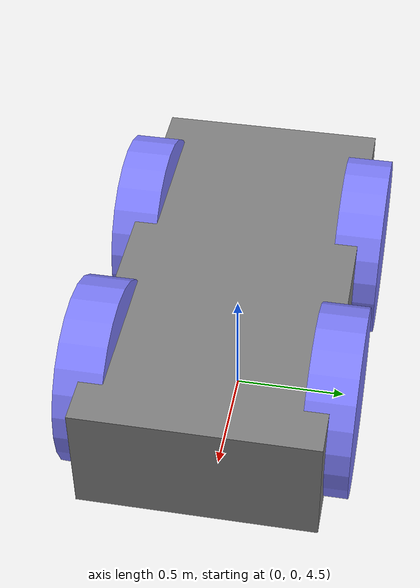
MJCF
<mujoco>

    <asset>
        <texture name="grid" type="2d" builtin="checker" width="512" height="512" rgb1=".1 .2 .3" rgb2=".2 .3 .4"/>
        <material name="grid" texture="grid" texrepeat="1 1" texuniform="true" reflectance=".2"/>
    </asset>

    <default>
        <joint damping=".03" actuatorfrcrange="-0.5 0.5"/>

        <default class="wheel">
            <geom type="cylinder" size="0.4 0.1" rgba=".5 .5 1 1"/>
        </default>

    </default>

    <worldbody>
    <geom type="plane" size="100 100 .01" material="grid"/>

    <body name="car" pos="0 0 5">
        <freejoint/>

        <light dir="1 0 0" pos="1.2 0 0.125" diffuse="1 1 1"/>

        <geom name="chasis" type="box" size="1 0.5 0.25"/>

        <body name="left back wheel" pos="-0.5 0.5 0" zaxis="0 1 0">
            <joint name="left back"/>
            <geom class="wheel"/>
        </body>

        <body name="right back wheel" pos="-0.5 -0.5 0" zaxis="0 1 0">
            <joint name="right back"/>
            <geom class="wheel"/>
        </body>

        <body name="left front wheel" pos="0.5 0.5 0" zaxis="0 1 0">
            <joint name="left front"/>
            <geom class="wheel"/>
        </body>

        <body name="right front wheel" pos="0.5 -0.5 0" zaxis="0 1 0">
            <joint name="right front"/>
            <geom class="wheel"/>
        </body>

    </body>

    </worldbody>

    <tendon>
        <fixed name="forward">
            <joint joint="left back" coef=".5"/>
            <joint joint="right back" coef=".5"/>
        </fixed>
    </tendon>

    <actuator>
        <motor name="forward" tendon="forward" ctrlrange="-1 1"/>
    </actuator>

    <sensor>
        <jointactuatorfrc name="right back" joint="right back"/>
        <jointactuatorfrc name="left back" joint="left back"/>
    </sensor>

</mujoco>
